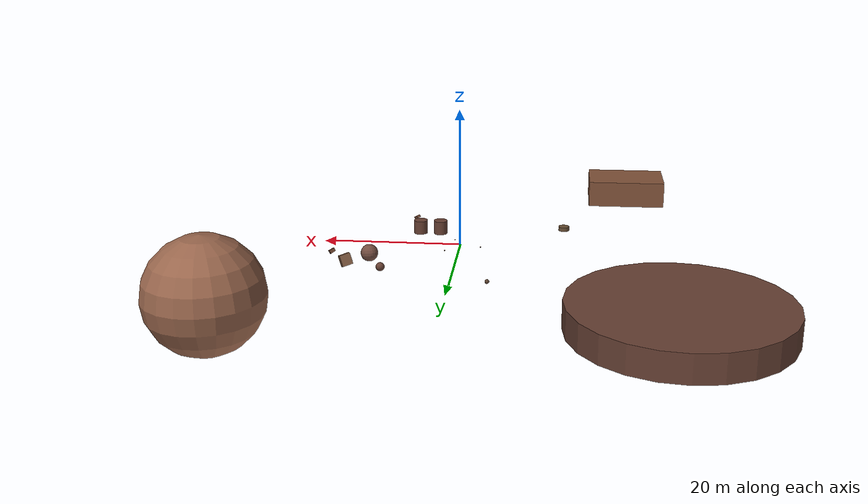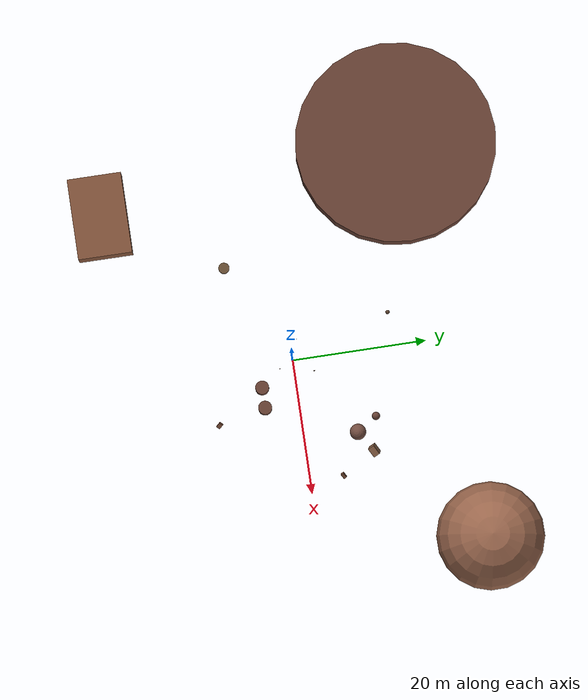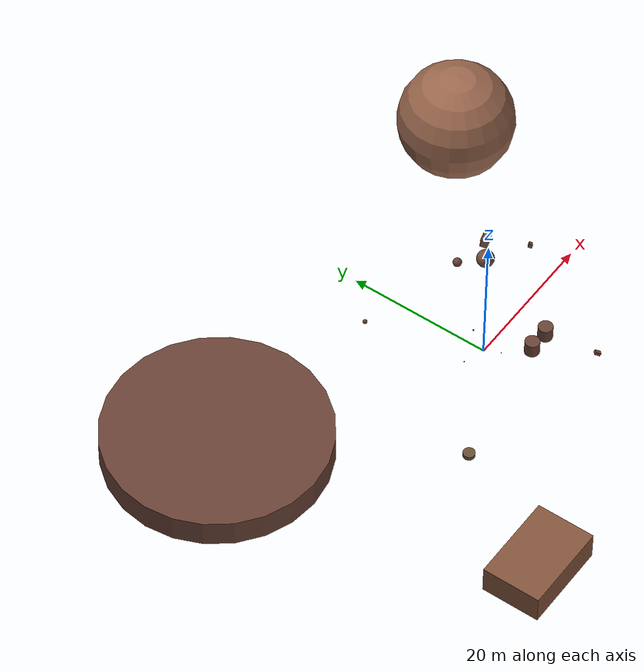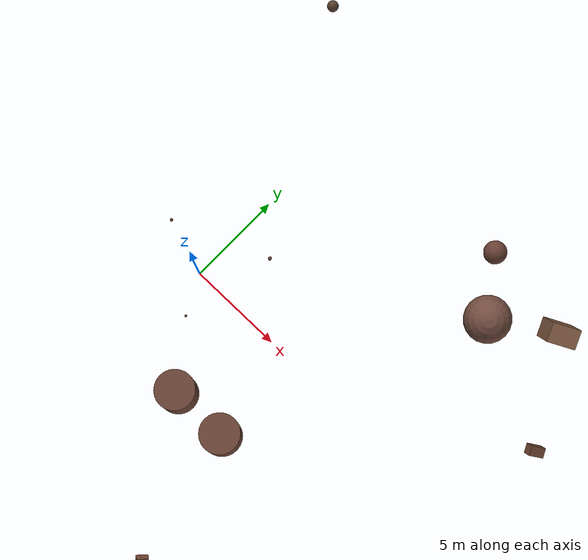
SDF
<sdf version="1.8">
 <world name="advanced_mars_terrain">
  <physics name="mars_physics" type="ignored">
   <max_step_size>0.001</max_step_size>
   <real_time_factor>1.0</real_time_factor>
  </physics>
  <plugin filename="libignition-gazebo-physics-system.so" name="ignition::gazebo::systems::Physics"/>
  <plugin filename="libignition-gazebo-user-commands-system.so" name="ignition::gazebo::systems::UserCommands"/>
  <plugin filename="libignition-gazebo-scene-broadcaster-system.so" name="ignition::gazebo::systems::SceneBroadcaster"/>
  <plugin filename="libignition-gazebo-sensors-system.so" name="ignition::gazebo::systems::Sensors">
   <render_engine>ogre2</render_engine>
  </plugin>
  <gravity>0 0 -3.71</gravity>
  <scene>
   <ambient>0.3 0.25 0.2 1.0</ambient>
   <background>0.8 0.6 0.4 1.0</background>
   <shadows>true</shadows>
   <fog>
    <color>0.8 0.6 0.4 1.0</color>
    <type>linear</type>
    <start>10</start>
    <end>200</end>
    <density>0.1</density>
   </fog>
  </scene>
  <light type="directional" name="mars_sun">
   <pose>50 25 50 0 0 0</pose>
   <diffuse>0.7 0.5 0.3 1</diffuse>
   <specular>0.3 0.2 0.1 1</specular>
   <attenuation>
    <range>1000</range>
    <constant>0.8</constant>
    <linear>0.01</linear>
    <quadratic>0.001</quadratic>
   </attenuation>
   <direction>-0.7 -0.3 -0.9</direction>
  </light>
  <light type="directional" name="fill_light">
   <cast_shadows>false</cast_shadows>
   <pose>-30 -20 30 0 0 0</pose>
   <diffuse>0.2 0.15 0.1 1</diffuse>
   <specular>0.1 0.05 0.0 1</specular>
   <direction>0.5 0.3 -0.8</direction>
  </light>
  <model name="large_crater">
   <pose>-30 20 -2 0 0 0</pose>
   <static>true</static>
   <link name="crater_link">
    <collision name="crater_collision">
     <geometry><cylinder><radius>15</radius><length>4</length></cylinder></geometry>
    </collision>
    <visual name="crater_visual">
     <geometry><cylinder><radius>15</radius><length>4</length></cylinder></geometry>
     <material>
      <ambient>0.3 0.2 0.15 1</ambient>
      <diffuse>0.4 0.25 0.2 1</diffuse>
      <specular>0.05 0.05 0.05 1</specular>
     </material>
    </visual>
   </link>
  </model>
  <model name="boulder_field_1">
   <pose>12 8 0 0 0 0</pose>
   <static>true</static>
   <link name="boulder_1">
    <pose>0 0 1.2 0.2 0.1 0</pose>
    <collision name="boulder_1_collision"><geometry><sphere><radius>1.2</radius></sphere></geometry></collision>
    <visual name="boulder_1_visual">
     <geometry><sphere><radius>1.2</radius></sphere></geometry>
     <material>
      <ambient>0.35 0.25 0.2 1</ambient>
      <diffuse>0.45 0.3 0.25 1</diffuse>
      <specular>0.15 0.1 0.1 1</specular>
     </material>
    </visual>
   </link>
   <link name="boulder_2">
    <pose>3 2 0.8 0.3 0.2 0.5</pose>
    <collision name="boulder_2_collision"><geometry><box><size>1.5 1.0 1.6</size></box></geometry></collision>
    <visual name="boulder_2_visual">
     <geometry><box><size>1.5 1.0 1.6</size></box></geometry>
     <material>
      <ambient>0.4 0.3 0.2 1</ambient>
      <diffuse>0.5 0.35 0.25 1</diffuse>
      <specular>0.1 0.1 0.1 1</specular>
     </material>
    </visual>
   </link>
   <link name="boulder_3">
    <pose>-2 3 0.3 0.1 0.3 1.2</pose>
    <collision name="boulder_3_collision"><geometry><sphere><radius>0.6</radius></sphere></geometry></collision>
    <visual name="boulder_3_visual">
     <geometry><sphere><radius>0.6</radius></sphere></geometry>
     <material>
      <ambient>0.3 0.2 0.15 1</ambient>
      <diffuse>0.4 0.25 0.2 1</diffuse>
      <specular>0.1 0.1 0.1 1</specular>
     </material>
    </visual>
   </link>
  </model>
  <model name="scattered_rocks">
   <static>true</static>
   <link name="rock_cluster_1">
    <pose>-15 -8 0.3 0 0 0</pose>
    <collision name="rock_1_collision">
     <geometry><cylinder><radius>0.8</radius><length>0.6</length></cylinder></geometry>
    </collision>
    <visual name="rock_1_visual">
     <geometry><cylinder><radius>0.8</radius><length>0.6</length></cylinder></geometry>
     <material>
      <ambient>0.3 0.2 0.1 1</ambient>
      <diffuse>0.4 0.3 0.2 1</diffuse>
      <specular>0.1 0.1 0.1 1</specular>
     </material>
    </visual>
   </link>
   <link name="rock_2">
    <pose>8 -12 0.2 0.5 0.2 0.8</pose>
    <collision name="rock_2_collision"><geometry><box><size>0.6 0.8 0.4</size></box></geometry></collision>
    <visual name="rock_2_visual">
     <geometry><box><size>0.6 0.8 0.4</size></box></geometry>
     <material>
      <ambient>0.35 0.22 0.15 1</ambient>
      <diffuse>0.45 0.28 0.2 1</diffuse>
      <specular>0.1 0.1 0.1 1</specular>
     </material>
    </visual>
   </link>
   <link name="rock_3">
    <pose>-5 15 0.15 0.2 0.1 1.5</pose>
    <collision name="rock_3_collision"><geometry><sphere><radius>0.3</radius></sphere></geometry></collision>
    <visual name="rock_3_visual">
     <geometry><sphere><radius>0.3</radius></sphere></geometry>
     <material>
      <ambient>0.25 0.18 0.12 1</ambient>
      <diffuse>0.35 0.25 0.18 1</diffuse>
      <specular>0.1 0.1 0.1 1</specular>
     </material>
    </visual>
   </link>
   <link name="rock_4">
    <pose>18 5 0.25 0.3 0.4 0.6</pose>
    <collision name="rock_4_collision"><geometry><box><size>0.8 0.5 0.5</size></box></geometry></collision>
    <visual name="rock_4_visual">
     <geometry><box><size>0.8 0.5 0.5</size></box></geometry>
     <material>
      <ambient>0.32 0.2 0.14 1</ambient>
      <diffuse>0.42 0.26 0.18 1</diffuse>
      <specular>0.1 0.1 0.1 1</specular>
     </material>
    </visual>
   </link>
  </model>
  <model name="mesa_formation">
   <pose>-25 -25 2 0 0 0</pose>
   <static>true</static>
   <link name="mesa_link">
    <collision name="mesa_collision"><geometry><box><size>12 8 4</size></box></geometry></collision>
    <visual name="mesa_visual">
     <geometry><box><size>12 8 4</size></box></geometry>
     <material>
      <ambient>0.4 0.25 0.18 1</ambient>
      <diffuse>0.5 0.32 0.22 1</diffuse>
      <specular>0.1 0.1 0.1 1</specular>
     </material>
    </visual>
   </link>
  </model>
  <model name="sand_dune">
   <pose>30 25 1 0 0 0.8</pose>
   <static>true</static>
   <link name="dune_link">
    <collision name="dune_collision"><geometry><sphere><radius>8</radius></sphere></geometry></collision>
    <visual name="dune_visual">
     <geometry><sphere><radius>8</radius></sphere></geometry>
     <material>
      <ambient>0.5 0.35 0.25 1</ambient>
      <diffuse>0.6 0.4 0.3 1</diffuse>
      <specular>0.05 0.05 0.05 1</specular>
     </material>
    </visual>
   </link>
  </model>
  <model name="rock_gate_1">
   <pose>5 -5 0 0 0 0</pose>
   <static>true</static>
   <link name="gate_rock_left">
    <pose>-1.5 0 1 0 0 0</pose>
    <collision name="gate_left_collision">
     <geometry><cylinder><radius>1.0</radius><length>2</length></cylinder></geometry>
    </collision>
    <visual name="gate_left_visual">
     <geometry><cylinder><radius>1.0</radius><length>2</length></cylinder></geometry>
     <material>
      <ambient>0.3 0.2 0.15 1</ambient>
      <diffuse>0.4 0.25 0.2 1</diffuse>
      <specular>0.1 0.1 0.1 1</specular>
     </material>
    </visual>
   </link>
   <link name="gate_rock_right">
    <pose>1.5 0 1 0 0 0</pose>
    <collision name="gate_right_collision">
     <geometry><cylinder><radius>1.0</radius><length>2</length></cylinder></geometry>
    </collision>
    <visual name="gate_right_visual">
     <geometry><cylinder><radius>1.0</radius><length>2</length></cylinder></geometry>
     <material>
      <ambient>0.3 0.2 0.15 1</ambient>
      <diffuse>0.4 0.25 0.2 1</diffuse>
      <specular>0.1 0.1 0.1 1</specular>
     </material>
    </visual>
   </link>
  </model>
  <model name="pebble_field">
   <static>true</static>
   <link name="pebble_1">
    <pose>2 3 0.05 0 0 0</pose>
    <collision name="pebble_1_collision"><geometry><sphere><radius>0.1</radius></sphere></geometry></collision>
    <visual name="pebble_1_visual">
     <geometry><sphere><radius>0.1</radius></sphere></geometry>
     <material><ambient>0.25 0.18 0.12 1</ambient><diffuse>0.35 0.25 0.18 1</diffuse></material>
    </visual>
   </link>
   <link name="pebble_2">
    <pose>-3 1 0.05 0 0 0</pose>
    <collision name="pebble_2_collision"><geometry><sphere><radius>0.08</radius></sphere></geometry></collision>
    <visual name="pebble_2_visual">
     <geometry><sphere><radius>0.08</radius></sphere></geometry>
     <material><ambient>0.3 0.2 0.15 1</ambient><diffuse>0.4 0.28 0.2 1</diffuse></material>
    </visual>
   </link>
   <link name="pebble_3">
    <pose>1 -2 0.03 0 0 0</pose>
    <collision name="pebble_3_collision"><geometry><sphere><radius>0.06</radius></sphere></geometry></collision>
    <visual name="pebble_3_visual">
     <geometry><sphere><radius>0.06</radius></sphere></geometry>
     <material><ambient>0.28 0.19 0.13 1</ambient><diffuse>0.38 0.26 0.19 1</diffuse></material>
    </visual>
   </link>
  </model>
 </world>
</sdf>
